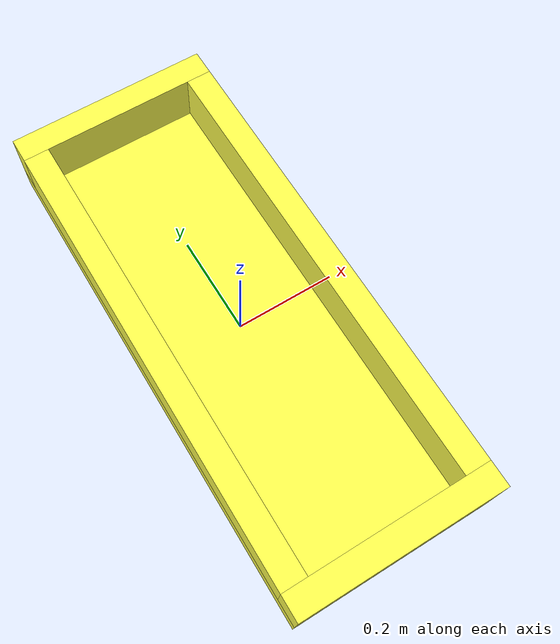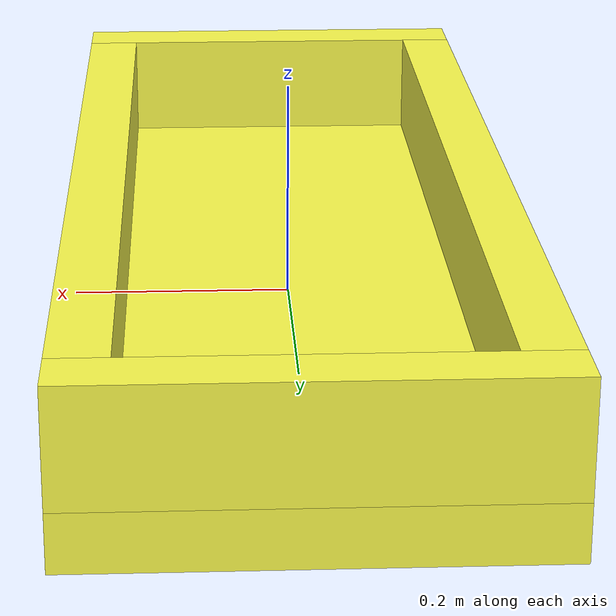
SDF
<?xml version='1.0'?>
<sdf version='1.6'>
  <model name='place_box'>
    <link name='link'>
      <inertial>
        <mass>1</mass>
        <inertia>
          <ixx>0.166667</ixx>
          <ixy>0</ixy>
          <ixz>0</ixz>
          <iyy>0.166667</iyy>
          <iyz>0</iyz>
          <izz>0.166667</izz>
        </inertia>
        <pose frame=''>0 0 0 0 -0 0</pose>
      </inertial>
      <self_collide>0</self_collide>
      <enable_wind>0</enable_wind>
      <kinematic>0</kinematic>
      <pose frame=''>0 0 0 0 -0 0</pose>
      <gravity>1</gravity>
      <visual name='visual'>
        <geometry>
          <box>
            <size>0.4 1 0.05</size>
          </box>
        </geometry>
        <material>
          <script>
            <name>Gazebo/Grey</name>
            <uri>file://media/materials/scripts/gazebo.material</uri>
          </script>
          <shader type='vertex'>
            <normal_map>__default__</normal_map>
          </shader>
          <ambient>1 1 0.3 1</ambient>
          <diffuse>0.7 0.7 0.7 1</diffuse>
          <specular>0.01 0.01 0.01 1</specular>
          <emissive>0 0 0 1</emissive>
        </material>
        <pose frame=''>0 0 0 0 -0 0</pose>
        <transparency>0</transparency>
        <cast_shadows>1</cast_shadows>
      </visual>
      <collision name='collision'>
        <laser_retro>0</laser_retro>
        <max_contacts>10</max_contacts>
        <pose frame=''>0 0 0 0 -0 0</pose>
        <geometry>
          <box>
            <size>0.4 1 0.05</size>
          </box>
        </geometry>
        <surface>
          <friction>
            <ode>
              <mu>1</mu>
              <mu2>1</mu2>
              <fdir1>0 0 0</fdir1>
              <slip1>0</slip1>
              <slip2>0</slip2>
            </ode>
            <torsional>
              <coefficient>1</coefficient>
              <patch_radius>0</patch_radius>
              <surface_radius>0</surface_radius>
              <use_patch_radius>1</use_patch_radius>
              <ode>
                <slip>0</slip>
              </ode>
            </torsional>
          </friction>
          <bounce>
            <restitution_coefficient>0</restitution_coefficient>
            <threshold>1e+06</threshold>
          </bounce>
          <contact>
            <collide_without_contact>0</collide_without_contact>
            <collide_without_contact_bitmask>1</collide_without_contact_bitmask>
            <collide_bitmask>1</collide_bitmask>
            <ode>
              <soft_cfm>0</soft_cfm>
              <soft_erp>0.2</soft_erp>
              <kp>1e+13</kp>
              <kd>1</kd>
              <max_vel>0.01</max_vel>
              <min_depth>0</min_depth>
            </ode>
            <bullet>
              <split_impulse>1</split_impulse>
              <split_impulse_penetration_threshold>-0.01</split_impulse_penetration_threshold>
              <soft_cfm>0</soft_cfm>
              <soft_erp>0.2</soft_erp>
              <kp>1e+13</kp>
              <kd>1</kd>
            </bullet>
          </contact>
        </surface>
      </collision>
    </link>
    <link name='link_0'>
      <inertial>
        <mass>1</mass>
        <inertia>
          <ixx>0.166667</ixx>
          <ixy>0</ixy>
          <ixz>0</ixz>
          <iyy>0.166667</iyy>
          <iyz>0</iyz>
          <izz>0.166667</izz>
        </inertia>
        <pose frame=''>0 0 0 0 -0 0</pose>
      </inertial>
      <pose frame=''>-0 -0.475 0.075 0 -0 0</pose>
      <gravity>1</gravity>
      <self_collide>0</self_collide>
      <kinematic>0</kinematic>
      <enable_wind>0</enable_wind>
      <visual name='visual'>
        <pose frame=''>0 0 0 0 -0 0</pose>
        <geometry>
          <box>
            <size>0.4 0.05 0.1</size>
          </box>
        </geometry>
        <material>
          <lighting>1</lighting>
          <script>
            <uri>file://media/materials/scripts/gazebo.material</uri>
            <name>Gazebo/Grey</name>
          </script>
          <shader type='vertex'>
            <normal_map>__default__</normal_map>
          </shader>
          <ambient>1 1 0.3 1</ambient>
          <diffuse>0.7 0.7 0.7 1</diffuse>
          <specular>0.01 0.01 0.01 1</specular>
          <emissive>0 0 0 1</emissive>
        </material>
        <transparency>0</transparency>
        <cast_shadows>1</cast_shadows>
      </visual>
      <collision name='collision'>
        <laser_retro>0</laser_retro>
        <max_contacts>10</max_contacts>
        <pose frame=''>0 0 0 0 -0 0</pose>
        <geometry>
          <box>
            <size>0.4 0.05 0.1</size>
          </box>
        </geometry>
        <surface>
          <friction>
            <ode>
              <mu>1</mu>
              <mu2>1</mu2>
              <fdir1>0 0 0</fdir1>
              <slip1>0</slip1>
              <slip2>0</slip2>
            </ode>
            <torsional>
              <coefficient>1</coefficient>
              <patch_radius>0</patch_radius>
              <surface_radius>0</surface_radius>
              <use_patch_radius>1</use_patch_radius>
              <ode>
                <slip>0</slip>
              </ode>
            </torsional>
          </friction>
          <bounce>
            <restitution_coefficient>0</restitution_coefficient>
            <threshold>1e+06</threshold>
          </bounce>
          <contact>
            <collide_without_contact>0</collide_without_contact>
            <collide_without_contact_bitmask>1</collide_without_contact_bitmask>
            <collide_bitmask>1</collide_bitmask>
            <ode>
              <soft_cfm>0</soft_cfm>
              <soft_erp>0.2</soft_erp>
              <kp>1e+13</kp>
              <kd>1</kd>
              <max_vel>0.01</max_vel>
              <min_depth>0</min_depth>
            </ode>
            <bullet>
              <split_impulse>1</split_impulse>
              <split_impulse_penetration_threshold>-0.01</split_impulse_penetration_threshold>
              <soft_cfm>0</soft_cfm>
              <soft_erp>0.2</soft_erp>
              <kp>1e+13</kp>
              <kd>1</kd>
            </bullet>
          </contact>
        </surface>
      </collision>
    </link>
    <link name='link_0_clone'>
      <inertial>
        <mass>1</mass>
        <inertia>
          <ixx>0.166667</ixx>
          <ixy>0</ixy>
          <ixz>0</ixz>
          <iyy>0.166667</iyy>
          <iyz>0</iyz>
          <izz>0.166667</izz>
        </inertia>
        <pose frame=''>0 0 0 0 -0 0</pose>
      </inertial>
      <pose frame=''>-0 0.475 0.075 0 -0 0</pose>
      <gravity>1</gravity>
      <self_collide>0</self_collide>
      <kinematic>0</kinematic>
      <enable_wind>0</enable_wind>
      <visual name='visual'>
        <pose frame=''>0 0 0 0 -0 0</pose>
        <geometry>
          <box>
            <size>0.4 0.05 0.1</size>
          </box>
        </geometry>
        <material>
          <lighting>1</lighting>
          <script>
            <uri>file://media/materials/scripts/gazebo.material</uri>
            <name>Gazebo/Grey</name>
          </script>
          <shader type='vertex'>
            <normal_map>__default__</normal_map>
          </shader>
          <ambient>1 1 0.3 1</ambient>
          <diffuse>0.7 0.7 0.7 1</diffuse>
          <specular>0.01 0.01 0.01 1</specular>
          <emissive>0 0 0 1</emissive>
        </material>
        <transparency>0</transparency>
        <cast_shadows>1</cast_shadows>
      </visual>
      <collision name='collision'>
        <laser_retro>0</laser_retro>
        <max_contacts>10</max_contacts>
        <pose frame=''>0 0 0 0 -0 0</pose>
        <geometry>
          <box>
            <size>0.4 0.05 0.1</size>
          </box>
        </geometry>
        <surface>
          <friction>
            <ode>
              <mu>1</mu>
              <mu2>1</mu2>
              <fdir1>0 0 0</fdir1>
              <slip1>0</slip1>
              <slip2>0</slip2>
            </ode>
            <torsional>
              <coefficient>1</coefficient>
              <patch_radius>0</patch_radius>
              <surface_radius>0</surface_radius>
              <use_patch_radius>1</use_patch_radius>
              <ode>
                <slip>0</slip>
              </ode>
            </torsional>
          </friction>
          <bounce>
            <restitution_coefficient>0</restitution_coefficient>
            <threshold>1e+06</threshold>
          </bounce>
          <contact>
            <collide_without_contact>0</collide_without_contact>
            <collide_without_contact_bitmask>1</collide_without_contact_bitmask>
            <collide_bitmask>1</collide_bitmask>
            <ode>
              <soft_cfm>0</soft_cfm>
              <soft_erp>0.2</soft_erp>
              <kp>1e+13</kp>
              <kd>1</kd>
              <max_vel>0.01</max_vel>
              <min_depth>0</min_depth>
            </ode>
            <bullet>
              <split_impulse>1</split_impulse>
              <split_impulse_penetration_threshold>-0.01</split_impulse_penetration_threshold>
              <soft_cfm>0</soft_cfm>
              <soft_erp>0.2</soft_erp>
              <kp>1e+13</kp>
              <kd>1</kd>
            </bullet>
          </contact>
        </surface>
      </collision>
    </link>
    <link name='link_2'>
      <inertial>
        <mass>1</mass>
        <inertia>
          <ixx>0.166667</ixx>
          <ixy>0</ixy>
          <ixz>0</ixz>
          <iyy>0.166667</iyy>
          <iyz>0</iyz>
          <izz>0.166667</izz>
        </inertia>
        <pose frame=''>0 0 0 0 -0 0</pose>
      </inertial>
      <pose frame=''>0.175 0 0.075 0 -0 0</pose>
      <gravity>1</gravity>
      <self_collide>0</self_collide>
      <kinematic>0</kinematic>
      <enable_wind>0</enable_wind>
      <visual name='visual'>
        <pose frame=''>0 0 0 0 -0 0</pose>
        <geometry>
          <box>
            <size>0.05 0.9 0.1</size>
          </box>
        </geometry>
        <material>
          <lighting>1</lighting>
          <script>
            <uri>file://media/materials/scripts/gazebo.material</uri>
            <name>Gazebo/Grey</name>
          </script>
          <shader type='vertex'>
            <normal_map>__default__</normal_map>
          </shader>
          <ambient>1 1 0.3 1</ambient>
          <diffuse>0.7 0.7 0.7 1</diffuse>
          <specular>0.01 0.01 0.01 1</specular>
          <emissive>0 0 0 1</emissive>
        </material>
        <transparency>0</transparency>
        <cast_shadows>1</cast_shadows>
      </visual>
      <collision name='collision'>
        <laser_retro>0</laser_retro>
        <max_contacts>10</max_contacts>
        <pose frame=''>0 0 0 0 -0 0</pose>
        <geometry>
          <box>
            <size>0.05 0.9 0.1</size>
          </box>
        </geometry>
        <surface>
          <friction>
            <ode>
              <mu>1</mu>
              <mu2>1</mu2>
              <fdir1>0 0 0</fdir1>
              <slip1>0</slip1>
              <slip2>0</slip2>
            </ode>
            <torsional>
              <coefficient>1</coefficient>
              <patch_radius>0</patch_radius>
              <surface_radius>0</surface_radius>
              <use_patch_radius>1</use_patch_radius>
              <ode>
                <slip>0</slip>
              </ode>
            </torsional>
          </friction>
          <bounce>
            <restitution_coefficient>0</restitution_coefficient>
            <threshold>1e+06</threshold>
          </bounce>
          <contact>
            <collide_without_contact>0</collide_without_contact>
            <collide_without_contact_bitmask>1</collide_without_contact_bitmask>
            <collide_bitmask>1</collide_bitmask>
            <ode>
              <soft_cfm>0</soft_cfm>
              <soft_erp>0.2</soft_erp>
              <kp>1e+13</kp>
              <kd>1</kd>
              <max_vel>0.01</max_vel>
              <min_depth>0</min_depth>
            </ode>
            <bullet>
              <split_impulse>1</split_impulse>
              <split_impulse_penetration_threshold>-0.01</split_impulse_penetration_threshold>
              <soft_cfm>0</soft_cfm>
              <soft_erp>0.2</soft_erp>
              <kp>1e+13</kp>
              <kd>1</kd>
            </bullet>
          </contact>
        </surface>
      </collision>
    </link>
    <link name='link_2_clone'>
      <inertial>
        <mass>1</mass>
        <inertia>
          <ixx>0.166667</ixx>
          <ixy>0</ixy>
          <ixz>0</ixz>
          <iyy>0.166667</iyy>
          <iyz>0</iyz>
          <izz>0.166667</izz>
        </inertia>
        <pose frame=''>0 0 0 0 -0 0</pose>
      </inertial>
      <pose frame=''>-0.175 0 0.075 0 -0 0</pose>
      <gravity>1</gravity>
      <self_collide>0</self_collide>
      <kinematic>0</kinematic>
      <enable_wind>0</enable_wind>
      <visual name='visual'>
        <pose frame=''>0 0 0 0 -0 0</pose>
        <geometry>
          <box>
            <size>0.05 0.9 0.1</size>
          </box>
        </geometry>
        <material>
          <lighting>1</lighting>
          <script>
            <uri>file://media/materials/scripts/gazebo.material</uri>
            <name>Gazebo/Grey</name>
          </script>
          <shader type='vertex'>
            <normal_map>__default__</normal_map>
          </shader>
          <ambient>1 1 0.3 1</ambient>
          <diffuse>0.7 0.7 0.7 1</diffuse>
          <specular>0.01 0.01 0.01 1</specular>
          <emissive>0 0 0 1</emissive>
        </material>
        <transparency>0</transparency>
        <cast_shadows>1</cast_shadows>
      </visual>
      <collision name='collision'>
        <laser_retro>0</laser_retro>
        <max_contacts>10</max_contacts>
        <pose frame=''>0 0 0 0 -0 0</pose>
        <geometry>
          <box>
            <size>0.05 0.9 0.1</size>
          </box>
        </geometry>
        <surface>
          <friction>
            <ode>
              <mu>1</mu>
              <mu2>1</mu2>
              <fdir1>0 0 0</fdir1>
              <slip1>0</slip1>
              <slip2>0</slip2>
            </ode>
            <torsional>
              <coefficient>1</coefficient>
              <patch_radius>0</patch_radius>
              <surface_radius>0</surface_radius>
              <use_patch_radius>1</use_patch_radius>
              <ode>
                <slip>0</slip>
              </ode>
            </torsional>
          </friction>
          <bounce>
            <restitution_coefficient>0</restitution_coefficient>
            <threshold>1e+06</threshold>
          </bounce>
          <contact>
            <collide_without_contact>0</collide_without_contact>
            <collide_without_contact_bitmask>1</collide_without_contact_bitmask>
            <collide_bitmask>1</collide_bitmask>
            <ode>
              <soft_cfm>0</soft_cfm>
              <soft_erp>0.2</soft_erp>
              <kp>1e+13</kp>
              <kd>1</kd>
              <max_vel>0.01</max_vel>
              <min_depth>0</min_depth>
            </ode>
            <bullet>
              <split_impulse>1</split_impulse>
              <split_impulse_penetration_threshold>-0.01</split_impulse_penetration_threshold>
              <soft_cfm>0</soft_cfm>
              <soft_erp>0.2</soft_erp>
              <kp>1e+13</kp>
              <kd>1</kd>
            </bullet>
          </contact>
        </surface>
      </collision>
    </link>
    <static>1</static>
    <allow_auto_disable>0</allow_auto_disable>
  </model>
</sdf>
